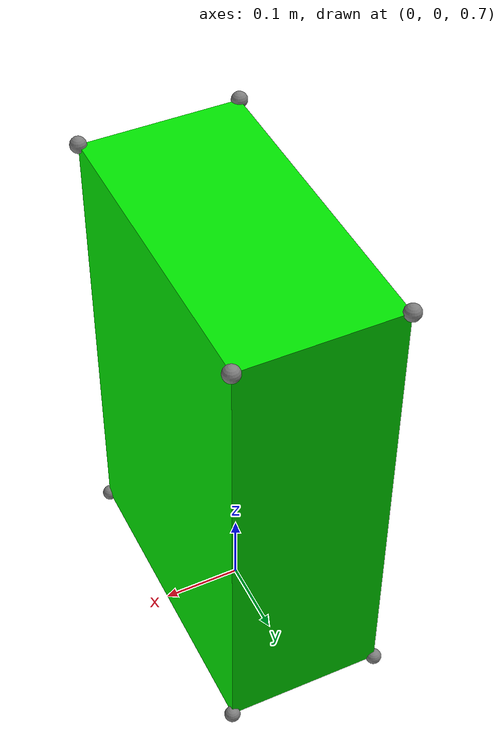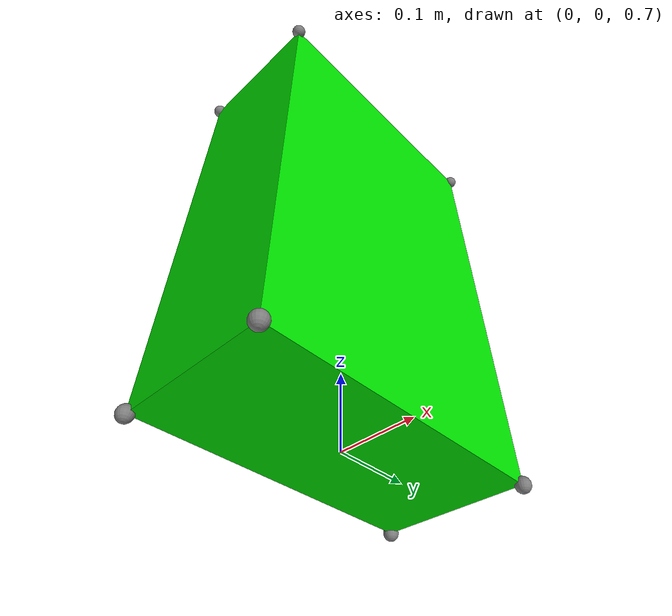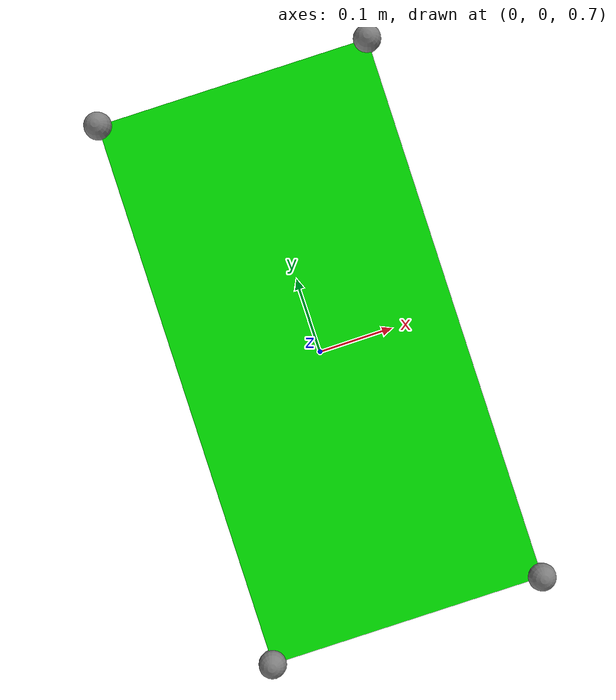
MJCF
<mujoco>
  <option timestep="0.01"> </option>
  <worldbody>
    <light diffuse=".5 .5 .5" pos="0 0 3" dir="0 0 -1"/>
    <body name="root" pos="0 0 1">
      <joint type="free"/>
      <geom type="box" size=".1 .2 .3" rgba="0 .9 0 1"/>
      <site name="corner1" type="sphere" size="0.01" pos=".1 .2 .3"/>
      <site name="corner2" type="sphere" size="0.01" pos="-.1 .2 .3"/>
      <site name="corner3" type="sphere" size="0.01" pos=".1 -.2 .3"/>
      <site name="corner4" type="sphere" size="0.01" pos=".1 .2 -.3"/>
      <site name="corner5" type="sphere" size="0.01" pos="-.1 -.2 .3"/>
      <site name="corner6" type="sphere" size="0.01" pos=".1 -.2 -.3"/>
      <site name="corner7" type="sphere" size="0.01" pos="-.1 .2 -.3"/>
      <site name="corner8" type="sphere" size="0.01" pos="-.1 -.2 -.3"/>
    </body>
  </worldbody>
  <sensor>
    <framepos name="position" objtype="body" objname="root" />
  </sensor>
</mujoco>
